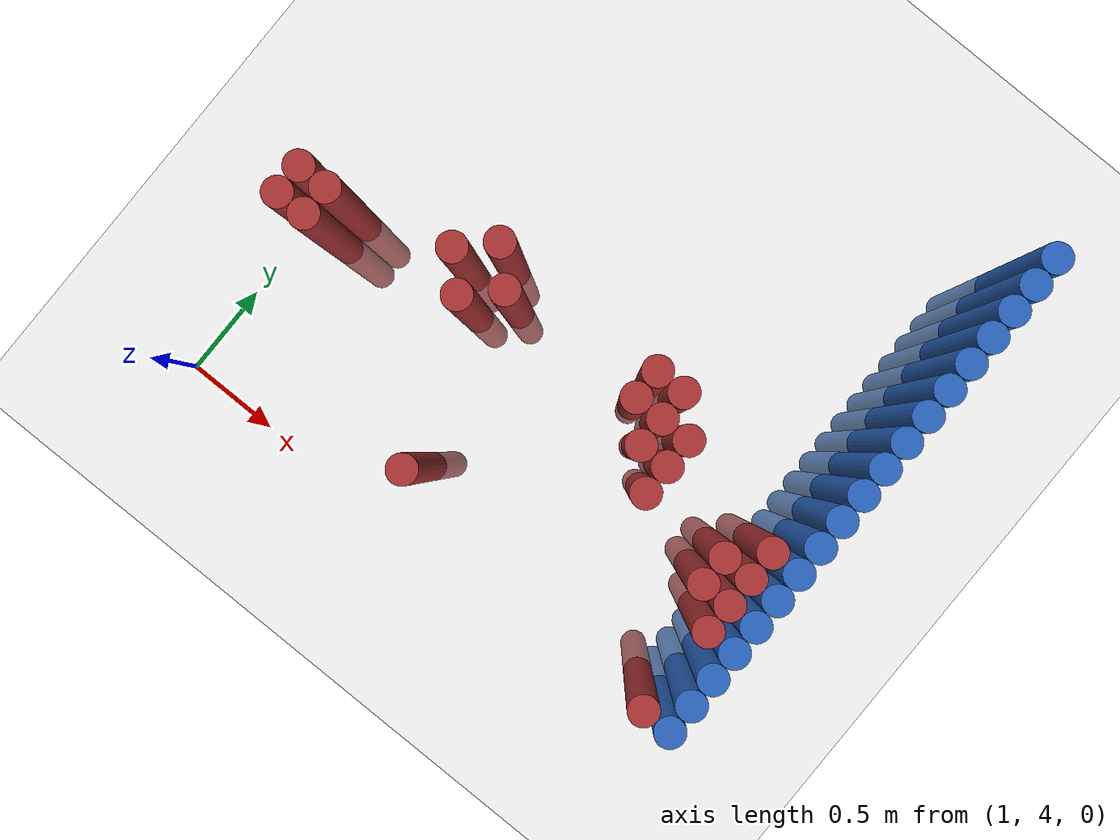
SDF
<sdf version="1.6">
 <world name="default">
  <model name="ground_plane">
   <static>1</static>
   <link name="link">
    <collision name="collision">
     <geometry><plane><normal>0 0 1</normal><size>100 100</size></plane></geometry>
     <surface><friction><ode><mu>100</mu><mu2>50</mu2></ode></friction></surface>
    </collision>
    <visual name="visual">
     <cast_shadows>0</cast_shadows>
     <geometry><plane><normal>0 0 1</normal><size>100 100</size></plane></geometry>
     <material>
      <script><uri>file://media/materials/scripts/gazebo.material</uri><name>Gazebo/Grey</name></script>
     </material>
    </visual>
   </link>
  </model>
  <model name="unit_cylinder_170">
   <static>1</static>
   <pose>3.925000 4.225000 0.000000 0.000000 0.000000 0.000000</pose>
   <link name="link">
    <inertial>
     <mass>1</mass>
     <inertia><ixx>0.145833</ixx><ixy>0</ixy><ixz>0</ixz><iyy>0.145833</iyy><iyz>0</iyz><izz>0.125</izz></inertia>
    </inertial>
    <collision name="collision">
     <geometry><cylinder><radius>0.075000</radius><length>1.5</length></cylinder></geometry>
    </collision>
    <visual name="visual">
     <geometry><cylinder><radius>0.075000</radius><length>1.5</length></cylinder></geometry>
     <material>
      <ambient>0.152000 0.379000 0.720000 1</ambient>
      <diffuse>0.152000 0.379000 0.720000 1</diffuse>
     </material>
     <material>
      <script><name>Gazebo/Grey</name><uri>file://media/materials/scripts/gazebo.material</uri></script>
     </material>
    </visual>
   </link>
  </model>
  <model name="unit_cylinder_172">
   <static>1</static>
   <pose>3.925000 4.375000 0.000000 0.000000 0.000000 0.000000</pose>
   <link name="link">
    <inertial>
     <mass>1</mass>
     <inertia><ixx>0.145833</ixx><ixy>0</ixy><ixz>0</ixz><iyy>0.145833</iyy><iyz>0</iyz><izz>0.125</izz></inertia>
    </inertial>
    <collision name="collision">
     <geometry><cylinder><radius>0.075000</radius><length>1.5</length></cylinder></geometry>
    </collision>
    <visual name="visual">
     <geometry><cylinder><radius>0.075000</radius><length>1.5</length></cylinder></geometry>
     <material>
      <ambient>0.152000 0.379000 0.720000 1</ambient>
      <diffuse>0.152000 0.379000 0.720000 1</diffuse>
     </material>
     <material>
      <script><name>Gazebo/Grey</name><uri>file://media/materials/scripts/gazebo.material</uri></script>
     </material>
    </visual>
   </link>
  </model>
  <model name="unit_cylinder_174">
   <static>1</static>
   <pose>3.925000 4.525000 0.000000 0.000000 0.000000 0.000000</pose>
   <link name="link">
    <inertial>
     <mass>1</mass>
     <inertia><ixx>0.145833</ixx><ixy>0</ixy><ixz>0</ixz><iyy>0.145833</iyy><iyz>0</iyz><izz>0.125</izz></inertia>
    </inertial>
    <collision name="collision">
     <geometry><cylinder><radius>0.075000</radius><length>1.5</length></cylinder></geometry>
    </collision>
    <visual name="visual">
     <geometry><cylinder><radius>0.075000</radius><length>1.5</length></cylinder></geometry>
     <material>
      <ambient>0.152000 0.379000 0.720000 1</ambient>
      <diffuse>0.152000 0.379000 0.720000 1</diffuse>
     </material>
     <material>
      <script><name>Gazebo/Grey</name><uri>file://media/materials/scripts/gazebo.material</uri></script>
     </material>
    </visual>
   </link>
  </model>
  <model name="unit_cylinder_176">
   <static>1</static>
   <pose>3.925000 4.675000 0.000000 0.000000 0.000000 0.000000</pose>
   <link name="link">
    <inertial>
     <mass>1</mass>
     <inertia><ixx>0.145833</ixx><ixy>0</ixy><ixz>0</ixz><iyy>0.145833</iyy><iyz>0</iyz><izz>0.125</izz></inertia>
    </inertial>
    <collision name="collision">
     <geometry><cylinder><radius>0.075000</radius><length>1.5</length></cylinder></geometry>
    </collision>
    <visual name="visual">
     <geometry><cylinder><radius>0.075000</radius><length>1.5</length></cylinder></geometry>
     <material>
      <ambient>0.152000 0.379000 0.720000 1</ambient>
      <diffuse>0.152000 0.379000 0.720000 1</diffuse>
     </material>
     <material>
      <script><name>Gazebo/Grey</name><uri>file://media/materials/scripts/gazebo.material</uri></script>
     </material>
    </visual>
   </link>
  </model>
  <model name="unit_cylinder_178">
   <static>1</static>
   <pose>3.925000 4.825000 0.000000 0.000000 0.000000 0.000000</pose>
   <link name="link">
    <inertial>
     <mass>1</mass>
     <inertia><ixx>0.145833</ixx><ixy>0</ixy><ixz>0</ixz><iyy>0.145833</iyy><iyz>0</iyz><izz>0.125</izz></inertia>
    </inertial>
    <collision name="collision">
     <geometry><cylinder><radius>0.075000</radius><length>1.5</length></cylinder></geometry>
    </collision>
    <visual name="visual">
     <geometry><cylinder><radius>0.075000</radius><length>1.5</length></cylinder></geometry>
     <material>
      <ambient>0.152000 0.379000 0.720000 1</ambient>
      <diffuse>0.152000 0.379000 0.720000 1</diffuse>
     </material>
     <material>
      <script><name>Gazebo/Grey</name><uri>file://media/materials/scripts/gazebo.material</uri></script>
     </material>
    </visual>
   </link>
  </model>
  <model name="unit_cylinder_180">
   <static>1</static>
   <pose>3.925000 4.975000 0.000000 0.000000 0.000000 0.000000</pose>
   <link name="link">
    <inertial>
     <mass>1</mass>
     <inertia><ixx>0.145833</ixx><ixy>0</ixy><ixz>0</ixz><iyy>0.145833</iyy><iyz>0</iyz><izz>0.125</izz></inertia>
    </inertial>
    <collision name="collision">
     <geometry><cylinder><radius>0.075000</radius><length>1.5</length></cylinder></geometry>
    </collision>
    <visual name="visual">
     <geometry><cylinder><radius>0.075000</radius><length>1.5</length></cylinder></geometry>
     <material>
      <ambient>0.152000 0.379000 0.720000 1</ambient>
      <diffuse>0.152000 0.379000 0.720000 1</diffuse>
     </material>
     <material>
      <script><name>Gazebo/Grey</name><uri>file://media/materials/scripts/gazebo.material</uri></script>
     </material>
    </visual>
   </link>
  </model>
  <model name="unit_cylinder_182">
   <static>1</static>
   <pose>3.925000 5.125000 0.000000 0.000000 0.000000 0.000000</pose>
   <link name="link">
    <inertial>
     <mass>1</mass>
     <inertia><ixx>0.145833</ixx><ixy>0</ixy><ixz>0</ixz><iyy>0.145833</iyy><iyz>0</iyz><izz>0.125</izz></inertia>
    </inertial>
    <collision name="collision">
     <geometry><cylinder><radius>0.075000</radius><length>1.5</length></cylinder></geometry>
    </collision>
    <visual name="visual">
     <geometry><cylinder><radius>0.075000</radius><length>1.5</length></cylinder></geometry>
     <material>
      <ambient>0.152000 0.379000 0.720000 1</ambient>
      <diffuse>0.152000 0.379000 0.720000 1</diffuse>
     </material>
     <material>
      <script><name>Gazebo/Grey</name><uri>file://media/materials/scripts/gazebo.material</uri></script>
     </material>
    </visual>
   </link>
  </model>
  <model name="unit_cylinder_184">
   <static>1</static>
   <pose>3.925000 5.275000 0.000000 0.000000 0.000000 0.000000</pose>
   <link name="link">
    <inertial>
     <mass>1</mass>
     <inertia><ixx>0.145833</ixx><ixy>0</ixy><ixz>0</ixz><iyy>0.145833</iyy><iyz>0</iyz><izz>0.125</izz></inertia>
    </inertial>
    <collision name="collision">
     <geometry><cylinder><radius>0.075000</radius><length>1.5</length></cylinder></geometry>
    </collision>
    <visual name="visual">
     <geometry><cylinder><radius>0.075000</radius><length>1.5</length></cylinder></geometry>
     <material>
      <ambient>0.152000 0.379000 0.720000 1</ambient>
      <diffuse>0.152000 0.379000 0.720000 1</diffuse>
     </material>
     <material>
      <script><name>Gazebo/Grey</name><uri>file://media/materials/scripts/gazebo.material</uri></script>
     </material>
    </visual>
   </link>
  </model>
  <model name="unit_cylinder_186">
   <static>1</static>
   <pose>3.925000 5.425000 0.000000 0.000000 0.000000 0.000000</pose>
   <link name="link">
    <inertial>
     <mass>1</mass>
     <inertia><ixx>0.145833</ixx><ixy>0</ixy><ixz>0</ixz><iyy>0.145833</iyy><iyz>0</iyz><izz>0.125</izz></inertia>
    </inertial>
    <collision name="collision">
     <geometry><cylinder><radius>0.075000</radius><length>1.5</length></cylinder></geometry>
    </collision>
    <visual name="visual">
     <geometry><cylinder><radius>0.075000</radius><length>1.5</length></cylinder></geometry>
     <material>
      <ambient>0.152000 0.379000 0.720000 1</ambient>
      <diffuse>0.152000 0.379000 0.720000 1</diffuse>
     </material>
     <material>
      <script><name>Gazebo/Grey</name><uri>file://media/materials/scripts/gazebo.material</uri></script>
     </material>
    </visual>
   </link>
  </model>
  <model name="unit_cylinder_188">
   <static>1</static>
   <pose>3.925000 5.575000 0.000000 0.000000 0.000000 0.000000</pose>
   <link name="link">
    <inertial>
     <mass>1</mass>
     <inertia><ixx>0.145833</ixx><ixy>0</ixy><ixz>0</ixz><iyy>0.145833</iyy><iyz>0</iyz><izz>0.125</izz></inertia>
    </inertial>
    <collision name="collision">
     <geometry><cylinder><radius>0.075000</radius><length>1.5</length></cylinder></geometry>
    </collision>
    <visual name="visual">
     <geometry><cylinder><radius>0.075000</radius><length>1.5</length></cylinder></geometry>
     <material>
      <ambient>0.152000 0.379000 0.720000 1</ambient>
      <diffuse>0.152000 0.379000 0.720000 1</diffuse>
     </material>
     <material>
      <script><name>Gazebo/Grey</name><uri>file://media/materials/scripts/gazebo.material</uri></script>
     </material>
    </visual>
   </link>
  </model>
  <model name="unit_cylinder_190">
   <static>1</static>
   <pose>3.925000 5.725000 0.000000 0.000000 0.000000 0.000000</pose>
   <link name="link">
    <inertial>
     <mass>1</mass>
     <inertia><ixx>0.145833</ixx><ixy>0</ixy><ixz>0</ixz><iyy>0.145833</iyy><iyz>0</iyz><izz>0.125</izz></inertia>
    </inertial>
    <collision name="collision">
     <geometry><cylinder><radius>0.075000</radius><length>1.5</length></cylinder></geometry>
    </collision>
    <visual name="visual">
     <geometry><cylinder><radius>0.075000</radius><length>1.5</length></cylinder></geometry>
     <material>
      <ambient>0.152000 0.379000 0.720000 1</ambient>
      <diffuse>0.152000 0.379000 0.720000 1</diffuse>
     </material>
     <material>
      <script><name>Gazebo/Grey</name><uri>file://media/materials/scripts/gazebo.material</uri></script>
     </material>
    </visual>
   </link>
  </model>
  <model name="unit_cylinder_192">
   <static>1</static>
   <pose>3.925000 5.875000 0.000000 0.000000 0.000000 0.000000</pose>
   <link name="link">
    <inertial>
     <mass>1</mass>
     <inertia><ixx>0.145833</ixx><ixy>0</ixy><ixz>0</ixz><iyy>0.145833</iyy><iyz>0</iyz><izz>0.125</izz></inertia>
    </inertial>
    <collision name="collision">
     <geometry><cylinder><radius>0.075000</radius><length>1.5</length></cylinder></geometry>
    </collision>
    <visual name="visual">
     <geometry><cylinder><radius>0.075000</radius><length>1.5</length></cylinder></geometry>
     <material>
      <ambient>0.152000 0.379000 0.720000 1</ambient>
      <diffuse>0.152000 0.379000 0.720000 1</diffuse>
     </material>
     <material>
      <script><name>Gazebo/Grey</name><uri>file://media/materials/scripts/gazebo.material</uri></script>
     </material>
    </visual>
   </link>
  </model>
  <model name="unit_cylinder_194">
   <static>1</static>
   <pose>3.925000 6.025000 0.000000 0.000000 0.000000 0.000000</pose>
   <link name="link">
    <inertial>
     <mass>1</mass>
     <inertia><ixx>0.145833</ixx><ixy>0</ixy><ixz>0</ixz><iyy>0.145833</iyy><iyz>0</iyz><izz>0.125</izz></inertia>
    </inertial>
    <collision name="collision">
     <geometry><cylinder><radius>0.075000</radius><length>1.5</length></cylinder></geometry>
    </collision>
    <visual name="visual">
     <geometry><cylinder><radius>0.075000</radius><length>1.5</length></cylinder></geometry>
     <material>
      <ambient>0.152000 0.379000 0.720000 1</ambient>
      <diffuse>0.152000 0.379000 0.720000 1</diffuse>
     </material>
     <material>
      <script><name>Gazebo/Grey</name><uri>file://media/materials/scripts/gazebo.material</uri></script>
     </material>
    </visual>
   </link>
  </model>
  <model name="unit_cylinder_196">
   <static>1</static>
   <pose>3.925000 6.175000 0.000000 0.000000 0.000000 0.000000</pose>
   <link name="link">
    <inertial>
     <mass>1</mass>
     <inertia><ixx>0.145833</ixx><ixy>0</ixy><ixz>0</ixz><iyy>0.145833</iyy><iyz>0</iyz><izz>0.125</izz></inertia>
    </inertial>
    <collision name="collision">
     <geometry><cylinder><radius>0.075000</radius><length>1.5</length></cylinder></geometry>
    </collision>
    <visual name="visual">
     <geometry><cylinder><radius>0.075000</radius><length>1.5</length></cylinder></geometry>
     <material>
      <ambient>0.152000 0.379000 0.720000 1</ambient>
      <diffuse>0.152000 0.379000 0.720000 1</diffuse>
     </material>
     <material>
      <script><name>Gazebo/Grey</name><uri>file://media/materials/scripts/gazebo.material</uri></script>
     </material>
    </visual>
   </link>
  </model>
  <model name="unit_cylinder_198">
   <static>1</static>
   <pose>3.925000 6.325000 0.000000 0.000000 0.000000 0.000000</pose>
   <link name="link">
    <inertial>
     <mass>1</mass>
     <inertia><ixx>0.145833</ixx><ixy>0</ixy><ixz>0</ixz><iyy>0.145833</iyy><iyz>0</iyz><izz>0.125</izz></inertia>
    </inertial>
    <collision name="collision">
     <geometry><cylinder><radius>0.075000</radius><length>1.5</length></cylinder></geometry>
    </collision>
    <visual name="visual">
     <geometry><cylinder><radius>0.075000</radius><length>1.5</length></cylinder></geometry>
     <material>
      <ambient>0.152000 0.379000 0.720000 1</ambient>
      <diffuse>0.152000 0.379000 0.720000 1</diffuse>
     </material>
     <material>
      <script><name>Gazebo/Grey</name><uri>file://media/materials/scripts/gazebo.material</uri></script>
     </material>
    </visual>
   </link>
  </model>
  <model name="unit_cylinder_200">
   <static>1</static>
   <pose>3.925000 6.475000 0.000000 0.000000 0.000000 0.000000</pose>
   <link name="link">
    <inertial>
     <mass>1</mass>
     <inertia><ixx>0.145833</ixx><ixy>0</ixy><ixz>0</ixz><iyy>0.145833</iyy><iyz>0</iyz><izz>0.125</izz></inertia>
    </inertial>
    <collision name="collision">
     <geometry><cylinder><radius>0.075000</radius><length>1.5</length></cylinder></geometry>
    </collision>
    <visual name="visual">
     <geometry><cylinder><radius>0.075000</radius><length>1.5</length></cylinder></geometry>
     <material>
      <ambient>0.152000 0.379000 0.720000 1</ambient>
      <diffuse>0.152000 0.379000 0.720000 1</diffuse>
     </material>
     <material>
      <script><name>Gazebo/Grey</name><uri>file://media/materials/scripts/gazebo.material</uri></script>
     </material>
    </visual>
   </link>
  </model>
  <model name="unit_cylinder_202">
   <static>1</static>
   <pose>3.925000 6.625000 0.000000 0.000000 0.000000 0.000000</pose>
   <link name="link">
    <inertial>
     <mass>1</mass>
     <inertia><ixx>0.145833</ixx><ixy>0</ixy><ixz>0</ixz><iyy>0.145833</iyy><iyz>0</iyz><izz>0.125</izz></inertia>
    </inertial>
    <collision name="collision">
     <geometry><cylinder><radius>0.075000</radius><length>1.5</length></cylinder></geometry>
    </collision>
    <visual name="visual">
     <geometry><cylinder><radius>0.075000</radius><length>1.5</length></cylinder></geometry>
     <material>
      <ambient>0.152000 0.379000 0.720000 1</ambient>
      <diffuse>0.152000 0.379000 0.720000 1</diffuse>
     </material>
     <material>
      <script><name>Gazebo/Grey</name><uri>file://media/materials/scripts/gazebo.material</uri></script>
     </material>
    </visual>
   </link>
  </model>
  <model name="unit_cylinder_204">
   <static>1</static>
   <pose>3.925000 6.775000 0.000000 0.000000 0.000000 0.000000</pose>
   <link name="link">
    <inertial>
     <mass>1</mass>
     <inertia><ixx>0.145833</ixx><ixy>0</ixy><ixz>0</ixz><iyy>0.145833</iyy><iyz>0</iyz><izz>0.125</izz></inertia>
    </inertial>
    <collision name="collision">
     <geometry><cylinder><radius>0.075000</radius><length>1.5</length></cylinder></geometry>
    </collision>
    <visual name="visual">
     <geometry><cylinder><radius>0.075000</radius><length>1.5</length></cylinder></geometry>
     <material>
      <ambient>0.152000 0.379000 0.720000 1</ambient>
      <diffuse>0.152000 0.379000 0.720000 1</diffuse>
     </material>
     <material>
      <script><name>Gazebo/Grey</name><uri>file://media/materials/scripts/gazebo.material</uri></script>
     </material>
    </visual>
   </link>
  </model>
  <model name="unit_cylinder_206">
   <static>1</static>
   <pose>3.925000 6.925000 0.000000 0.000000 0.000000 0.000000</pose>
   <link name="link">
    <inertial>
     <mass>1</mass>
     <inertia><ixx>0.145833</ixx><ixy>0</ixy><ixz>0</ixz><iyy>0.145833</iyy><iyz>0</iyz><izz>0.125</izz></inertia>
    </inertial>
    <collision name="collision">
     <geometry><cylinder><radius>0.075000</radius><length>1.5</length></cylinder></geometry>
    </collision>
    <visual name="visual">
     <geometry><cylinder><radius>0.075000</radius><length>1.5</length></cylinder></geometry>
     <material>
      <ambient>0.152000 0.379000 0.720000 1</ambient>
      <diffuse>0.152000 0.379000 0.720000 1</diffuse>
     </material>
     <material>
      <script><name>Gazebo/Grey</name><uri>file://media/materials/scripts/gazebo.material</uri></script>
     </material>
    </visual>
   </link>
  </model>
  <model name="unit_cylinder_432">
   <static>1</static>
   <pose>1.075000 4.975000 0.000000 0.000000 0.000000 0.000000</pose>
   <link name="link">
    <inertial>
     <mass>1</mass>
     <inertia><ixx>0.145833</ixx><ixy>0</ixy><ixz>0</ixz><iyy>0.145833</iyy><iyz>0</iyz><izz>0.125</izz></inertia>
    </inertial>
    <collision name="collision">
     <geometry><cylinder><radius>0.075000</radius><length>1.5</length></cylinder></geometry>
    </collision>
    <visual name="visual">
     <geometry><cylinder><radius>0.075000</radius><length>1.5</length></cylinder></geometry>
     <material>
      <ambient>0.648000 0.192000 0.192000 1</ambient>
      <diffuse>0.648000 0.192000 0.192000 1</diffuse>
     </material>
     <material>
      <script><name>Gazebo/Grey</name><uri>file://media/materials/scripts/gazebo.material</uri></script>
     </material>
    </visual>
   </link>
  </model>
  <model name="unit_cylinder_433">
   <static>1</static>
   <pose>1.075000 5.125000 0.000000 0.000000 0.000000 0.000000</pose>
   <link name="link">
    <inertial>
     <mass>1</mass>
     <inertia><ixx>0.145833</ixx><ixy>0</ixy><ixz>0</ixz><iyy>0.145833</iyy><iyz>0</iyz><izz>0.125</izz></inertia>
    </inertial>
    <collision name="collision">
     <geometry><cylinder><radius>0.075000</radius><length>1.5</length></cylinder></geometry>
    </collision>
    <visual name="visual">
     <geometry><cylinder><radius>0.075000</radius><length>1.5</length></cylinder></geometry>
     <material>
      <ambient>0.648000 0.192000 0.192000 1</ambient>
      <diffuse>0.648000 0.192000 0.192000 1</diffuse>
     </material>
     <material>
      <script><name>Gazebo/Grey</name><uri>file://media/materials/scripts/gazebo.material</uri></script>
     </material>
    </visual>
   </link>
  </model>
  <model name="unit_cylinder_438">
   <static>1</static>
   <pose>1.225000 4.975000 0.000000 0.000000 0.000000 0.000000</pose>
   <link name="link">
    <inertial>
     <mass>1</mass>
     <inertia><ixx>0.145833</ixx><ixy>0</ixy><ixz>0</ixz><iyy>0.145833</iyy><iyz>0</iyz><izz>0.125</izz></inertia>
    </inertial>
    <collision name="collision">
     <geometry><cylinder><radius>0.075000</radius><length>1.5</length></cylinder></geometry>
    </collision>
    <visual name="visual">
     <geometry><cylinder><radius>0.075000</radius><length>1.5</length></cylinder></geometry>
     <material>
      <ambient>0.648000 0.192000 0.192000 1</ambient>
      <diffuse>0.648000 0.192000 0.192000 1</diffuse>
     </material>
     <material>
      <script><name>Gazebo/Grey</name><uri>file://media/materials/scripts/gazebo.material</uri></script>
     </material>
    </visual>
   </link>
  </model>
  <model name="unit_cylinder_439">
   <static>1</static>
   <pose>1.225000 5.125000 0.000000 0.000000 0.000000 0.000000</pose>
   <link name="link">
    <inertial>
     <mass>1</mass>
     <inertia><ixx>0.145833</ixx><ixy>0</ixy><ixz>0</ixz><iyy>0.145833</iyy><iyz>0</iyz><izz>0.125</izz></inertia>
    </inertial>
    <collision name="collision">
     <geometry><cylinder><radius>0.075000</radius><length>1.5</length></cylinder></geometry>
    </collision>
    <visual name="visual">
     <geometry><cylinder><radius>0.075000</radius><length>1.5</length></cylinder></geometry>
     <material>
      <ambient>0.648000 0.192000 0.192000 1</ambient>
      <diffuse>0.648000 0.192000 0.192000 1</diffuse>
     </material>
     <material>
      <script><name>Gazebo/Grey</name><uri>file://media/materials/scripts/gazebo.material</uri></script>
     </material>
    </visual>
   </link>
  </model>
  <model name="unit_cylinder_464">
   <static>1</static>
   <pose>1.825000 5.275000 0.000000 0.000000 0.000000 0.000000</pose>
   <link name="link">
    <inertial>
     <mass>1</mass>
     <inertia><ixx>0.145833</ixx><ixy>0</ixy><ixz>0</ixz><iyy>0.145833</iyy><iyz>0</iyz><izz>0.125</izz></inertia>
    </inertial>
    <collision name="collision">
     <geometry><cylinder><radius>0.075000</radius><length>1.5</length></cylinder></geometry>
    </collision>
    <visual name="visual">
     <geometry><cylinder><radius>0.075000</radius><length>1.5</length></cylinder></geometry>
     <material>
      <ambient>0.648000 0.192000 0.192000 1</ambient>
      <diffuse>0.648000 0.192000 0.192000 1</diffuse>
     </material>
     <material>
      <script><name>Gazebo/Grey</name><uri>file://media/materials/scripts/gazebo.material</uri></script>
     </material>
    </visual>
   </link>
  </model>
  <model name="unit_cylinder_466">
   <static>1</static>
   <pose>1.975000 5.125000 0.000000 0.000000 0.000000 0.000000</pose>
   <link name="link">
    <inertial>
     <mass>1</mass>
     <inertia><ixx>0.145833</ixx><ixy>0</ixy><ixz>0</ixz><iyy>0.145833</iyy><iyz>0</iyz><izz>0.125</izz></inertia>
    </inertial>
    <collision name="collision">
     <geometry><cylinder><radius>0.075000</radius><length>1.5</length></cylinder></geometry>
    </collision>
    <visual name="visual">
     <geometry><cylinder><radius>0.075000</radius><length>1.5</length></cylinder></geometry>
     <material>
      <ambient>0.648000 0.192000 0.192000 1</ambient>
      <diffuse>0.648000 0.192000 0.192000 1</diffuse>
     </material>
     <material>
      <script><name>Gazebo/Grey</name><uri>file://media/materials/scripts/gazebo.material</uri></script>
     </material>
    </visual>
   </link>
  </model>
  <model name="unit_cylinder_467">
   <static>1</static>
   <pose>1.975000 5.425000 0.000000 0.000000 0.000000 0.000000</pose>
   <link name="link">
    <inertial>
     <mass>1</mass>
     <inertia><ixx>0.145833</ixx><ixy>0</ixy><ixz>0</ixz><iyy>0.145833</iyy><iyz>0</iyz><izz>0.125</izz></inertia>
    </inertial>
    <collision name="collision">
     <geometry><cylinder><radius>0.075000</radius><length>1.5</length></cylinder></geometry>
    </collision>
    <visual name="visual">
     <geometry><cylinder><radius>0.075000</radius><length>1.5</length></cylinder></geometry>
     <material>
      <ambient>0.648000 0.192000 0.192000 1</ambient>
      <diffuse>0.648000 0.192000 0.192000 1</diffuse>
     </material>
     <material>
      <script><name>Gazebo/Grey</name><uri>file://media/materials/scripts/gazebo.material</uri></script>
     </material>
    </visual>
   </link>
  </model>
  <model name="unit_cylinder_468">
   <static>1</static>
   <pose>2.125000 5.275000 0.000000 0.000000 0.000000 0.000000</pose>
   <link name="link">
    <inertial>
     <mass>1</mass>
     <inertia><ixx>0.145833</ixx><ixy>0</ixy><ixz>0</ixz><iyy>0.145833</iyy><iyz>0</iyz><izz>0.125</izz></inertia>
    </inertial>
    <collision name="collision">
     <geometry><cylinder><radius>0.075000</radius><length>1.5</length></cylinder></geometry>
    </collision>
    <visual name="visual">
     <geometry><cylinder><radius>0.075000</radius><length>1.5</length></cylinder></geometry>
     <material>
      <ambient>0.648000 0.192000 0.192000 1</ambient>
      <diffuse>0.648000 0.192000 0.192000 1</diffuse>
     </material>
     <material>
      <script><name>Gazebo/Grey</name><uri>file://media/materials/scripts/gazebo.material</uri></script>
     </material>
    </visual>
   </link>
  </model>
  <model name="unit_cylinder_471">
   <static>1</static>
   <pose>2.275000 4.375000 0.000000 0.000000 0.000000 0.000000</pose>
   <link name="link">
    <inertial>
     <mass>1</mass>
     <inertia><ixx>0.145833</ixx><ixy>0</ixy><ixz>0</ixz><iyy>0.145833</iyy><iyz>0</iyz><izz>0.125</izz></inertia>
    </inertial>
    <collision name="collision">
     <geometry><cylinder><radius>0.075000</radius><length>1.5</length></cylinder></geometry>
    </collision>
    <visual name="visual">
     <geometry><cylinder><radius>0.075000</radius><length>1.5</length></cylinder></geometry>
     <material>
      <ambient>0.648000 0.192000 0.192000 1</ambient>
      <diffuse>0.648000 0.192000 0.192000 1</diffuse>
     </material>
     <material>
      <script><name>Gazebo/Grey</name><uri>file://media/materials/scripts/gazebo.material</uri></script>
     </material>
    </visual>
   </link>
  </model>
  <model name="unit_cylinder_490">
   <static>1</static>
   <pose>2.875000 5.275000 0.000000 0.000000 0.000000 0.000000</pose>
   <link name="link">
    <inertial>
     <mass>1</mass>
     <inertia><ixx>0.145833</ixx><ixy>0</ixy><ixz>0</ixz><iyy>0.145833</iyy><iyz>0</iyz><izz>0.125</izz></inertia>
    </inertial>
    <collision name="collision">
     <geometry><cylinder><radius>0.075000</radius><length>1.5</length></cylinder></geometry>
    </collision>
    <visual name="visual">
     <geometry><cylinder><radius>0.075000</radius><length>1.5</length></cylinder></geometry>
     <material>
      <ambient>0.648000 0.192000 0.192000 1</ambient>
      <diffuse>0.648000 0.192000 0.192000 1</diffuse>
     </material>
     <material>
      <script><name>Gazebo/Grey</name><uri>file://media/materials/scripts/gazebo.material</uri></script>
     </material>
    </visual>
   </link>
  </model>
  <model name="unit_cylinder_491">
   <static>1</static>
   <pose>2.875000 5.425000 0.000000 0.000000 0.000000 0.000000</pose>
   <link name="link">
    <inertial>
     <mass>1</mass>
     <inertia><ixx>0.145833</ixx><ixy>0</ixy><ixz>0</ixz><iyy>0.145833</iyy><iyz>0</iyz><izz>0.125</izz></inertia>
    </inertial>
    <collision name="collision">
     <geometry><cylinder><radius>0.075000</radius><length>1.5</length></cylinder></geometry>
    </collision>
    <visual name="visual">
     <geometry><cylinder><radius>0.075000</radius><length>1.5</length></cylinder></geometry>
     <material>
      <ambient>0.648000 0.192000 0.192000 1</ambient>
      <diffuse>0.648000 0.192000 0.192000 1</diffuse>
     </material>
     <material>
      <script><name>Gazebo/Grey</name><uri>file://media/materials/scripts/gazebo.material</uri></script>
     </material>
    </visual>
   </link>
  </model>
  <model name="unit_cylinder_498">
   <static>1</static>
   <pose>3.025000 5.125000 0.000000 0.000000 0.000000 0.000000</pose>
   <link name="link">
    <inertial>
     <mass>1</mass>
     <inertia><ixx>0.145833</ixx><ixy>0</ixy><ixz>0</ixz><iyy>0.145833</iyy><iyz>0</iyz><izz>0.125</izz></inertia>
    </inertial>
    <collision name="collision">
     <geometry><cylinder><radius>0.075000</radius><length>1.5</length></cylinder></geometry>
    </collision>
    <visual name="visual">
     <geometry><cylinder><radius>0.075000</radius><length>1.5</length></cylinder></geometry>
     <material>
      <ambient>0.648000 0.192000 0.192000 1</ambient>
      <diffuse>0.648000 0.192000 0.192000 1</diffuse>
     </material>
     <material>
      <script><name>Gazebo/Grey</name><uri>file://media/materials/scripts/gazebo.material</uri></script>
     </material>
    </visual>
   </link>
  </model>
  <model name="unit_cylinder_499">
   <static>1</static>
   <pose>3.025000 5.275000 0.000000 0.000000 0.000000 0.000000</pose>
   <link name="link">
    <inertial>
     <mass>1</mass>
     <inertia><ixx>0.145833</ixx><ixy>0</ixy><ixz>0</ixz><iyy>0.145833</iyy><iyz>0</iyz><izz>0.125</izz></inertia>
    </inertial>
    <collision name="collision">
     <geometry><cylinder><radius>0.075000</radius><length>1.5</length></cylinder></geometry>
    </collision>
    <visual name="visual">
     <geometry><cylinder><radius>0.075000</radius><length>1.5</length></cylinder></geometry>
     <material>
      <ambient>0.648000 0.192000 0.192000 1</ambient>
      <diffuse>0.648000 0.192000 0.192000 1</diffuse>
     </material>
     <material>
      <script><name>Gazebo/Grey</name><uri>file://media/materials/scripts/gazebo.material</uri></script>
     </material>
    </visual>
   </link>
  </model>
  <model name="unit_cylinder_500">
   <static>1</static>
   <pose>3.025000 5.425000 0.000000 0.000000 0.000000 0.000000</pose>
   <link name="link">
    <inertial>
     <mass>1</mass>
     <inertia><ixx>0.145833</ixx><ixy>0</ixy><ixz>0</ixz><iyy>0.145833</iyy><iyz>0</iyz><izz>0.125</izz></inertia>
    </inertial>
    <collision name="collision">
     <geometry><cylinder><radius>0.075000</radius><length>1.5</length></cylinder></geometry>
    </collision>
    <visual name="visual">
     <geometry><cylinder><radius>0.075000</radius><length>1.5</length></cylinder></geometry>
     <material>
      <ambient>0.648000 0.192000 0.192000 1</ambient>
      <diffuse>0.648000 0.192000 0.192000 1</diffuse>
     </material>
     <material>
      <script><name>Gazebo/Grey</name><uri>file://media/materials/scripts/gazebo.material</uri></script>
     </material>
    </visual>
   </link>
  </model>
  <model name="unit_cylinder_505">
   <static>1</static>
   <pose>3.175000 4.975000 0.000000 0.000000 0.000000 0.000000</pose>
   <link name="link">
    <inertial>
     <mass>1</mass>
     <inertia><ixx>0.145833</ixx><ixy>0</ixy><ixz>0</ixz><iyy>0.145833</iyy><iyz>0</iyz><izz>0.125</izz></inertia>
    </inertial>
    <collision name="collision">
     <geometry><cylinder><radius>0.075000</radius><length>1.5</length></cylinder></geometry>
    </collision>
    <visual name="visual">
     <geometry><cylinder><radius>0.075000</radius><length>1.5</length></cylinder></geometry>
     <material>
      <ambient>0.648000 0.192000 0.192000 1</ambient>
      <diffuse>0.648000 0.192000 0.192000 1</diffuse>
     </material>
     <material>
      <script><name>Gazebo/Grey</name><uri>file://media/materials/scripts/gazebo.material</uri></script>
     </material>
    </visual>
   </link>
  </model>
  <model name="unit_cylinder_506">
   <static>1</static>
   <pose>3.175000 5.125000 0.000000 0.000000 0.000000 0.000000</pose>
   <link name="link">
    <inertial>
     <mass>1</mass>
     <inertia><ixx>0.145833</ixx><ixy>0</ixy><ixz>0</ixz><iyy>0.145833</iyy><iyz>0</iyz><izz>0.125</izz></inertia>
    </inertial>
    <collision name="collision">
     <geometry><cylinder><radius>0.075000</radius><length>1.5</length></cylinder></geometry>
    </collision>
    <visual name="visual">
     <geometry><cylinder><radius>0.075000</radius><length>1.5</length></cylinder></geometry>
     <material>
      <ambient>0.648000 0.192000 0.192000 1</ambient>
      <diffuse>0.648000 0.192000 0.192000 1</diffuse>
     </material>
     <material>
      <script><name>Gazebo/Grey</name><uri>file://media/materials/scripts/gazebo.material</uri></script>
     </material>
    </visual>
   </link>
  </model>
  <model name="unit_cylinder_507">
   <static>1</static>
   <pose>3.175000 5.275000 0.000000 0.000000 0.000000 0.000000</pose>
   <link name="link">
    <inertial>
     <mass>1</mass>
     <inertia><ixx>0.145833</ixx><ixy>0</ixy><ixz>0</ixz><iyy>0.145833</iyy><iyz>0</iyz><izz>0.125</izz></inertia>
    </inertial>
    <collision name="collision">
     <geometry><cylinder><radius>0.075000</radius><length>1.5</length></cylinder></geometry>
    </collision>
    <visual name="visual">
     <geometry><cylinder><radius>0.075000</radius><length>1.5</length></cylinder></geometry>
     <material>
      <ambient>0.648000 0.192000 0.192000 1</ambient>
      <diffuse>0.648000 0.192000 0.192000 1</diffuse>
     </material>
     <material>
      <script><name>Gazebo/Grey</name><uri>file://media/materials/scripts/gazebo.material</uri></script>
     </material>
    </visual>
   </link>
  </model>
  <model name="unit_cylinder_533">
   <static>1</static>
   <pose>3.625000 4.825000 0.000000 0.000000 0.000000 0.000000</pose>
   <link name="link">
    <inertial>
     <mass>1</mass>
     <inertia><ixx>0.145833</ixx><ixy>0</ixy><ixz>0</ixz><iyy>0.145833</iyy><iyz>0</iyz><izz>0.125</izz></inertia>
    </inertial>
    <collision name="collision">
     <geometry><cylinder><radius>0.075000</radius><length>1.5</length></cylinder></geometry>
    </collision>
    <visual name="visual">
     <geometry><cylinder><radius>0.075000</radius><length>1.5</length></cylinder></geometry>
     <material>
      <ambient>0.648000 0.192000 0.192000 1</ambient>
      <diffuse>0.648000 0.192000 0.192000 1</diffuse>
     </material>
     <material>
      <script><name>Gazebo/Grey</name><uri>file://media/materials/scripts/gazebo.material</uri></script>
     </material>
    </visual>
   </link>
  </model>
  <model name="unit_cylinder_534">
   <static>1</static>
   <pose>3.625000 4.975000 0.000000 0.000000 0.000000 0.000000</pose>
   <link name="link">
    <inertial>
     <mass>1</mass>
     <inertia><ixx>0.145833</ixx><ixy>0</ixy><ixz>0</ixz><iyy>0.145833</iyy><iyz>0</iyz><izz>0.125</izz></inertia>
    </inertial>
    <collision name="collision">
     <geometry><cylinder><radius>0.075000</radius><length>1.5</length></cylinder></geometry>
    </collision>
    <visual name="visual">
     <geometry><cylinder><radius>0.075000</radius><length>1.5</length></cylinder></geometry>
     <material>
      <ambient>0.648000 0.192000 0.192000 1</ambient>
      <diffuse>0.648000 0.192000 0.192000 1</diffuse>
     </material>
     <material>
      <script><name>Gazebo/Grey</name><uri>file://media/materials/scripts/gazebo.material</uri></script>
     </material>
    </visual>
   </link>
  </model>
  <model name="unit_cylinder_558">
   <static>1</static>
   <pose>3.775000 4.225000 0.000000 0.000000 0.000000 0.000000</pose>
   <link name="link">
    <inertial>
     <mass>1</mass>
     <inertia><ixx>0.145833</ixx><ixy>0</ixy><ixz>0</ixz><iyy>0.145833</iyy><iyz>0</iyz><izz>0.125</izz></inertia>
    </inertial>
    <collision name="collision">
     <geometry><cylinder><radius>0.075000</radius><length>1.5</length></cylinder></geometry>
    </collision>
    <visual name="visual">
     <geometry><cylinder><radius>0.075000</radius><length>1.5</length></cylinder></geometry>
     <material>
      <ambient>0.648000 0.192000 0.192000 1</ambient>
      <diffuse>0.648000 0.192000 0.192000 1</diffuse>
     </material>
     <material>
      <script><name>Gazebo/Grey</name><uri>file://media/materials/scripts/gazebo.material</uri></script>
     </material>
    </visual>
   </link>
  </model>
  <model name="unit_cylinder_559">
   <static>1</static>
   <pose>3.775000 4.675000 0.000000 0.000000 0.000000 0.000000</pose>
   <link name="link">
    <inertial>
     <mass>1</mass>
     <inertia><ixx>0.145833</ixx><ixy>0</ixy><ixz>0</ixz><iyy>0.145833</iyy><iyz>0</iyz><izz>0.125</izz></inertia>
    </inertial>
    <collision name="collision">
     <geometry><cylinder><radius>0.075000</radius><length>1.5</length></cylinder></geometry>
    </collision>
    <visual name="visual">
     <geometry><cylinder><radius>0.075000</radius><length>1.5</length></cylinder></geometry>
     <material>
      <ambient>0.648000 0.192000 0.192000 1</ambient>
      <diffuse>0.648000 0.192000 0.192000 1</diffuse>
     </material>
     <material>
      <script><name>Gazebo/Grey</name><uri>file://media/materials/scripts/gazebo.material</uri></script>
     </material>
    </visual>
   </link>
  </model>
  <model name="unit_cylinder_560">
   <static>1</static>
   <pose>3.775000 4.825000 0.000000 0.000000 0.000000 0.000000</pose>
   <link name="link">
    <inertial>
     <mass>1</mass>
     <inertia><ixx>0.145833</ixx><ixy>0</ixy><ixz>0</ixz><iyy>0.145833</iyy><iyz>0</iyz><izz>0.125</izz></inertia>
    </inertial>
    <collision name="collision">
     <geometry><cylinder><radius>0.075000</radius><length>1.5</length></cylinder></geometry>
    </collision>
    <visual name="visual">
     <geometry><cylinder><radius>0.075000</radius><length>1.5</length></cylinder></geometry>
     <material>
      <ambient>0.648000 0.192000 0.192000 1</ambient>
      <diffuse>0.648000 0.192000 0.192000 1</diffuse>
     </material>
     <material>
      <script><name>Gazebo/Grey</name><uri>file://media/materials/scripts/gazebo.material</uri></script>
     </material>
    </visual>
   </link>
  </model>
  <model name="unit_cylinder_561">
   <static>1</static>
   <pose>3.775000 4.975000 0.000000 0.000000 0.000000 0.000000</pose>
   <link name="link">
    <inertial>
     <mass>1</mass>
     <inertia><ixx>0.145833</ixx><ixy>0</ixy><ixz>0</ixz><iyy>0.145833</iyy><iyz>0</iyz><izz>0.125</izz></inertia>
    </inertial>
    <collision name="collision">
     <geometry><cylinder><radius>0.075000</radius><length>1.5</length></cylinder></geometry>
    </collision>
    <visual name="visual">
     <geometry><cylinder><radius>0.075000</radius><length>1.5</length></cylinder></geometry>
     <material>
      <ambient>0.648000 0.192000 0.192000 1</ambient>
      <diffuse>0.648000 0.192000 0.192000 1</diffuse>
     </material>
     <material>
      <script><name>Gazebo/Grey</name><uri>file://media/materials/scripts/gazebo.material</uri></script>
     </material>
    </visual>
   </link>
  </model>
  <model name="unit_cylinder_562">
   <static>1</static>
   <pose>3.775000 5.125000 0.000000 0.000000 0.000000 0.000000</pose>
   <link name="link">
    <inertial>
     <mass>1</mass>
     <inertia><ixx>0.145833</ixx><ixy>0</ixy><ixz>0</ixz><iyy>0.145833</iyy><iyz>0</iyz><izz>0.125</izz></inertia>
    </inertial>
    <collision name="collision">
     <geometry><cylinder><radius>0.075000</radius><length>1.5</length></cylinder></geometry>
    </collision>
    <visual name="visual">
     <geometry><cylinder><radius>0.075000</radius><length>1.5</length></cylinder></geometry>
     <material>
      <ambient>0.648000 0.192000 0.192000 1</ambient>
      <diffuse>0.648000 0.192000 0.192000 1</diffuse>
     </material>
     <material>
      <script><name>Gazebo/Grey</name><uri>file://media/materials/scripts/gazebo.material</uri></script>
     </material>
    </visual>
   </link>
  </model>
  <model name="unit_cylinder_604">
   <static>1</static>
   <pose>3.925000 4.225000 0.000000 0.000000 0.000000 0.000000</pose>
   <link name="link">
    <inertial>
     <mass>1</mass>
     <inertia><ixx>0.145833</ixx><ixy>0</ixy><ixz>0</ixz><iyy>0.145833</iyy><iyz>0</iyz><izz>0.125</izz></inertia>
    </inertial>
    <collision name="collision">
     <geometry><cylinder><radius>0.075000</radius><length>1.5</length></cylinder></geometry>
    </collision>
    <visual name="visual">
     <geometry><cylinder><radius>0.075000</radius><length>1.5</length></cylinder></geometry>
     <material>
      <ambient>0.152000 0.379000 0.720000 1</ambient>
      <diffuse>0.152000 0.379000 0.720000 1</diffuse>
     </material>
     <material>
      <script><name>Gazebo/Grey</name><uri>file://media/materials/scripts/gazebo.material</uri></script>
     </material>
    </visual>
   </link>
  </model>
  <model name="unit_cylinder_605">
   <static>1</static>
   <pose>3.925000 4.375000 0.000000 0.000000 0.000000 0.000000</pose>
   <link name="link">
    <inertial>
     <mass>1</mass>
     <inertia><ixx>0.145833</ixx><ixy>0</ixy><ixz>0</ixz><iyy>0.145833</iyy><iyz>0</iyz><izz>0.125</izz></inertia>
    </inertial>
    <collision name="collision">
     <geometry><cylinder><radius>0.075000</radius><length>1.5</length></cylinder></geometry>
    </collision>
    <visual name="visual">
     <geometry><cylinder><radius>0.075000</radius><length>1.5</length></cylinder></geometry>
     <material>
      <ambient>0.152000 0.379000 0.720000 1</ambient>
      <diffuse>0.152000 0.379000 0.720000 1</diffuse>
     </material>
     <material>
      <script><name>Gazebo/Grey</name><uri>file://media/materials/scripts/gazebo.material</uri></script>
     </material>
    </visual>
   </link>
  </model>
  <model name="unit_cylinder_606">
   <static>1</static>
   <pose>3.925000 4.525000 0.000000 0.000000 0.000000 0.000000</pose>
   <link name="link">
    <inertial>
     <mass>1</mass>
     <inertia><ixx>0.145833</ixx><ixy>0</ixy><ixz>0</ixz><iyy>0.145833</iyy><iyz>0</iyz><izz>0.125</izz></inertia>
    </inertial>
    <collision name="collision">
     <geometry><cylinder><radius>0.075000</radius><length>1.5</length></cylinder></geometry>
    </collision>
    <visual name="visual">
     <geometry><cylinder><radius>0.075000</radius><length>1.5</length></cylinder></geometry>
     <material>
      <ambient>0.152000 0.379000 0.720000 1</ambient>
      <diffuse>0.152000 0.379000 0.720000 1</diffuse>
     </material>
     <material>
      <script><name>Gazebo/Grey</name><uri>file://media/materials/scripts/gazebo.material</uri></script>
     </material>
    </visual>
   </link>
  </model>
  <model name="unit_cylinder_607">
   <static>1</static>
   <pose>3.925000 4.675000 0.000000 0.000000 0.000000 0.000000</pose>
   <link name="link">
    <inertial>
     <mass>1</mass>
     <inertia><ixx>0.145833</ixx><ixy>0</ixy><ixz>0</ixz><iyy>0.145833</iyy><iyz>0</iyz><izz>0.125</izz></inertia>
    </inertial>
    <collision name="collision">
     <geometry><cylinder><radius>0.075000</radius><length>1.5</length></cylinder></geometry>
    </collision>
    <visual name="visual">
     <geometry><cylinder><radius>0.075000</radius><length>1.5</length></cylinder></geometry>
     <material>
      <ambient>0.152000 0.379000 0.720000 1</ambient>
      <diffuse>0.152000 0.379000 0.720000 1</diffuse>
     </material>
     <material>
      <script><name>Gazebo/Grey</name><uri>file://media/materials/scripts/gazebo.material</uri></script>
     </material>
    </visual>
   </link>
  </model>
  <model name="unit_cylinder_608">
   <static>1</static>
   <pose>3.925000 4.825000 0.000000 0.000000 0.000000 0.000000</pose>
   <link name="link">
    <inertial>
     <mass>1</mass>
     <inertia><ixx>0.145833</ixx><ixy>0</ixy><ixz>0</ixz><iyy>0.145833</iyy><iyz>0</iyz><izz>0.125</izz></inertia>
    </inertial>
    <collision name="collision">
     <geometry><cylinder><radius>0.075000</radius><length>1.5</length></cylinder></geometry>
    </collision>
    <visual name="visual">
     <geometry><cylinder><radius>0.075000</radius><length>1.5</length></cylinder></geometry>
     <material>
      <ambient>0.152000 0.379000 0.720000 1</ambient>
      <diffuse>0.152000 0.379000 0.720000 1</diffuse>
     </material>
     <material>
      <script><name>Gazebo/Grey</name><uri>file://media/materials/scripts/gazebo.material</uri></script>
     </material>
    </visual>
   </link>
  </model>
  <model name="unit_cylinder_609">
   <static>1</static>
   <pose>3.925000 4.975000 0.000000 0.000000 0.000000 0.000000</pose>
   <link name="link">
    <inertial>
     <mass>1</mass>
     <inertia><ixx>0.145833</ixx><ixy>0</ixy><ixz>0</ixz><iyy>0.145833</iyy><iyz>0</iyz><izz>0.125</izz></inertia>
    </inertial>
    <collision name="collision">
     <geometry><cylinder><radius>0.075000</radius><length>1.5</length></cylinder></geometry>
    </collision>
    <visual name="visual">
     <geometry><cylinder><radius>0.075000</radius><length>1.5</length></cylinder></geometry>
     <material>
      <ambient>0.152000 0.379000 0.720000 1</ambient>
      <diffuse>0.152000 0.379000 0.720000 1</diffuse>
     </material>
     <material>
      <script><name>Gazebo/Grey</name><uri>file://media/materials/scripts/gazebo.material</uri></script>
     </material>
    </visual>
   </link>
  </model>
  <model name="unit_cylinder_610">
   <static>1</static>
   <pose>3.925000 5.125000 0.000000 0.000000 0.000000 0.000000</pose>
   <link name="link">
    <inertial>
     <mass>1</mass>
     <inertia><ixx>0.145833</ixx><ixy>0</ixy><ixz>0</ixz><iyy>0.145833</iyy><iyz>0</iyz><izz>0.125</izz></inertia>
    </inertial>
    <collision name="collision">
     <geometry><cylinder><radius>0.075000</radius><length>1.5</length></cylinder></geometry>
    </collision>
    <visual name="visual">
     <geometry><cylinder><radius>0.075000</radius><length>1.5</length></cylinder></geometry>
     <material>
      <ambient>0.152000 0.379000 0.720000 1</ambient>
      <diffuse>0.152000 0.379000 0.720000 1</diffuse>
     </material>
     <material>
      <script><name>Gazebo/Grey</name><uri>file://media/materials/scripts/gazebo.material</uri></script>
     </material>
    </visual>
   </link>
  </model>
  <model name="unit_cylinder_611">
   <static>1</static>
   <pose>3.925000 5.275000 0.000000 0.000000 0.000000 0.000000</pose>
   <link name="link">
    <inertial>
     <mass>1</mass>
     <inertia><ixx>0.145833</ixx><ixy>0</ixy><ixz>0</ixz><iyy>0.145833</iyy><iyz>0</iyz><izz>0.125</izz></inertia>
    </inertial>
    <collision name="collision">
     <geometry><cylinder><radius>0.075000</radius><length>1.5</length></cylinder></geometry>
    </collision>
    <visual name="visual">
     <geometry><cylinder><radius>0.075000</radius><length>1.5</length></cylinder></geometry>
     <material>
      <ambient>0.152000 0.379000 0.720000 1</ambient>
      <diffuse>0.152000 0.379000 0.720000 1</diffuse>
     </material>
     <material>
      <script><name>Gazebo/Grey</name><uri>file://media/materials/scripts/gazebo.material</uri></script>
     </material>
    </visual>
   </link>
  </model>
  <model name="unit_cylinder_612">
   <static>1</static>
   <pose>3.925000 5.425000 0.000000 0.000000 0.000000 0.000000</pose>
   <link name="link">
    <inertial>
     <mass>1</mass>
     <inertia><ixx>0.145833</ixx><ixy>0</ixy><ixz>0</ixz><iyy>0.145833</iyy><iyz>0</iyz><izz>0.125</izz></inertia>
    </inertial>
    <collision name="collision">
     <geometry><cylinder><radius>0.075000</radius><length>1.5</length></cylinder></geometry>
    </collision>
    <visual name="visual">
     <geometry><cylinder><radius>0.075000</radius><length>1.5</length></cylinder></geometry>
     <material>
      <ambient>0.152000 0.379000 0.720000 1</ambient>
      <diffuse>0.152000 0.379000 0.720000 1</diffuse>
     </material>
     <material>
      <script><name>Gazebo/Grey</name><uri>file://media/materials/scripts/gazebo.material</uri></script>
     </material>
    </visual>
   </link>
  </model>
 </world>
</sdf>
